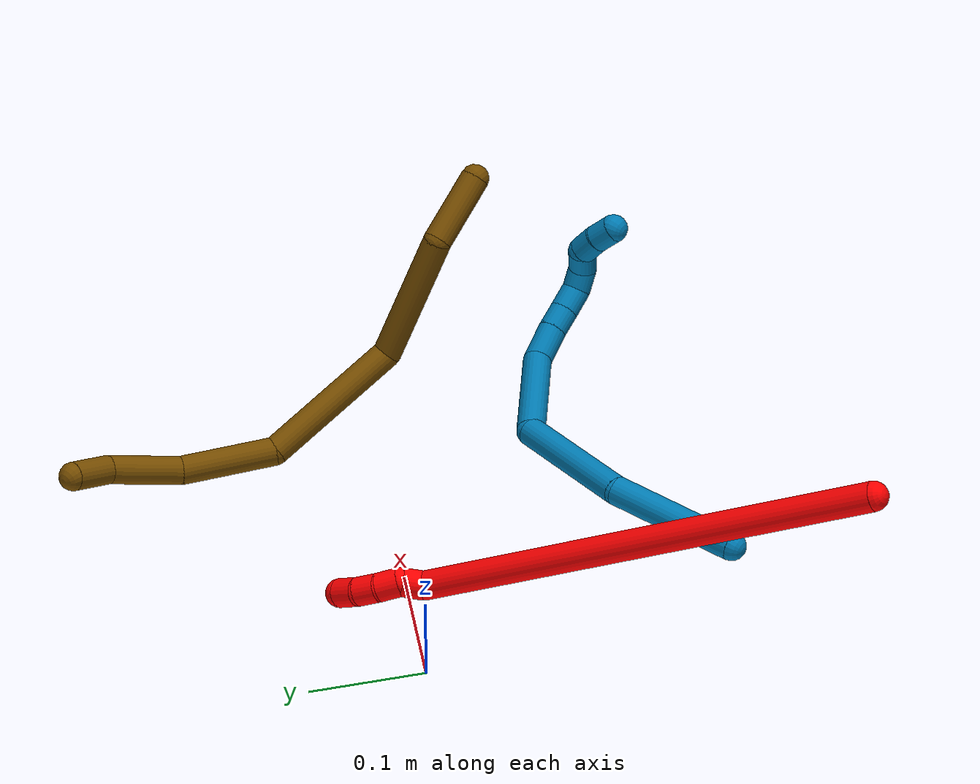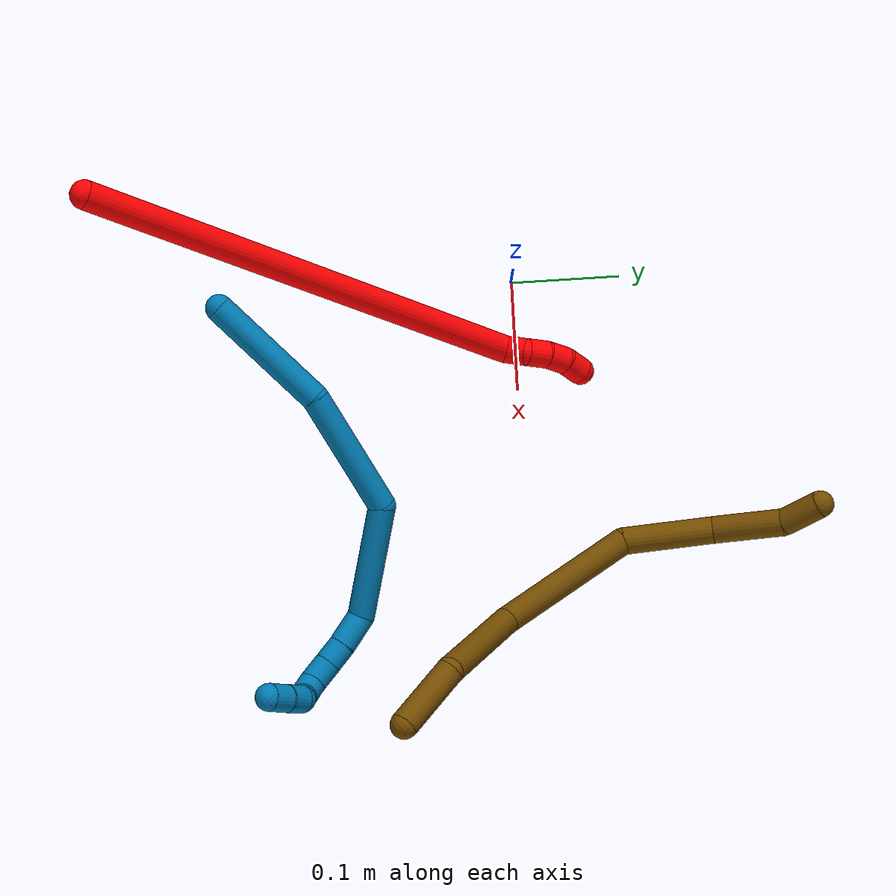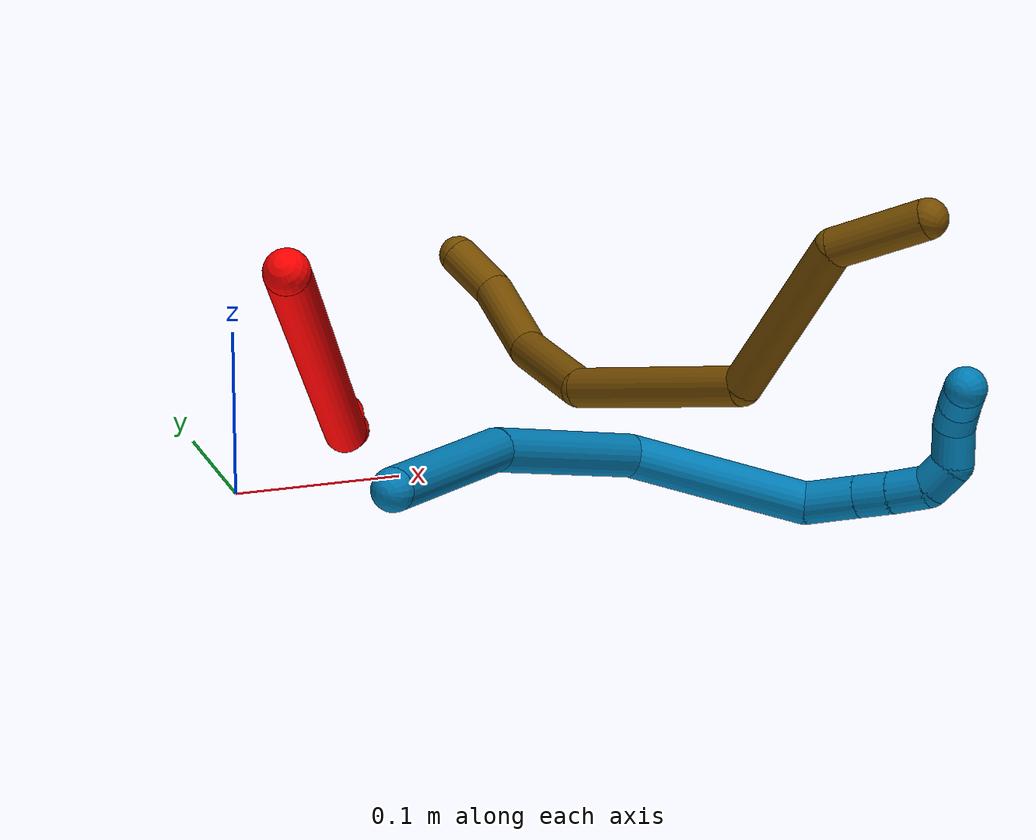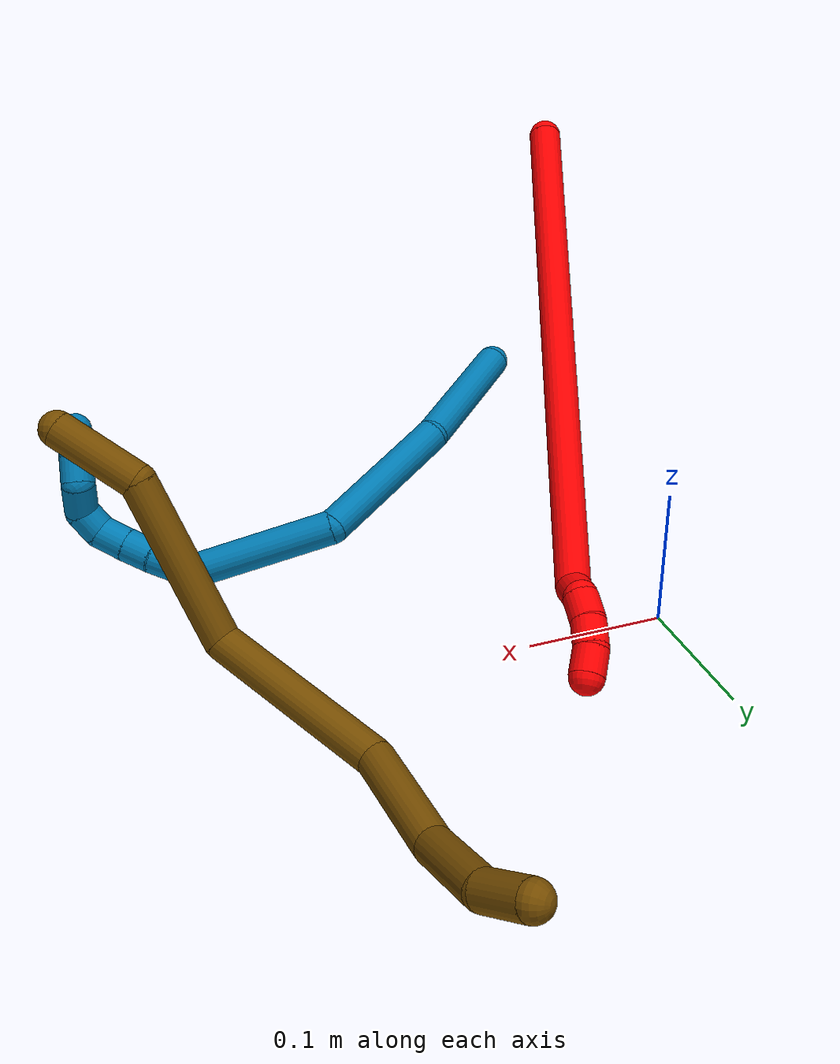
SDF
<sdf version="1.7">
 <world name="default">
  <model name="2">
   <static>0</static>
   <link name="2">
    <collision name="collision-cylinder-e_1_1_4">
     <pose>-0.017324 0.049232 -0.203187 -2.90388 -0.082674 0.666824</pose>
     <geometry><cylinder><radius>0.0125</radius><length>0.419566</length></cylinder></geometry>
     <surface>
      <friction><ode><mu>1.16</mu><mu2>1.16</mu2><slip1>0</slip1><slip2>0</slip2></ode></friction>
      <contact><ode><kp>1e+06</kp><kd>1</kd><max_vel>0</max_vel><min_depth>0.001</min_depth></ode></contact>
     </surface>
    </collision>
    <visual name="visual-cylinder-e_1_1_4">
     <pose>-0.017324 0.049232 -0.203187 -2.90388 -0.082674 0.666824</pose>
     <geometry><cylinder><radius>0.0125</radius><length>0.419566</length></cylinder></geometry>
     <material><ambient>1 0 0 1</ambient></material>
    </visual>
    <collision name="collision-cylinder-e_2_4_5">
     <pose>-0.0342 0.106935 -0.411709 -2.13275 0.044622 -0.080798</pose>
     <geometry><cylinder><radius>0.0125</radius><length>0.020044</length></cylinder></geometry>
     <surface>
      <friction><ode><mu>1.16</mu><mu2>1.16</mu2><slip1>0</slip1><slip2>0</slip2></ode></friction>
      <contact><ode><kp>1e+06</kp><kd>1</kd><max_vel>0</max_vel><min_depth>0.001</min_depth></ode></contact>
     </surface>
    </collision>
    <visual name="visual-cylinder-e_2_4_5">
     <pose>-0.0342 0.106935 -0.411709 -2.13275 0.044622 -0.080798</pose>
     <geometry><cylinder><radius>0.0125</radius><length>0.020044</length></cylinder></geometry>
     <material><ambient>1 0 0 1</ambient></material>
    </visual>
    <collision name="collision-cylinder-e_3_5_6">
     <pose>-0.035934 0.119597 -0.425939 -2.70141 -0.21821 0.910647</pose>
     <geometry><cylinder><radius>0.0125</radius><length>0.020142</length></cylinder></geometry>
     <surface>
      <friction><ode><mu>1.16</mu><mu2>1.16</mu2><slip1>0</slip1><slip2>0</slip2></ode></friction>
      <contact><ode><kp>1e+06</kp><kd>1</kd><max_vel>0</max_vel><min_depth>0.001</min_depth></ode></contact>
     </surface>
    </collision>
    <visual name="visual-cylinder-e_3_5_6">
     <pose>-0.035934 0.119597 -0.425939 -2.70141 -0.21821 0.910647</pose>
     <geometry><cylinder><radius>0.0125</radius><length>0.020142</length></cylinder></geometry>
     <material><ambient>1 0 0 1</ambient></material>
    </visual>
    <collision name="collision-cylinder-e_4_6_7">
     <pose>-0.039087 0.126541 -0.444412 -2.86161 -0.097365 0.665772</pose>
     <geometry><cylinder><radius>0.0125</radius><length>0.020027</length></cylinder></geometry>
     <surface>
      <friction><ode><mu>1.16</mu><mu2>1.16</mu2><slip1>0</slip1><slip2>0</slip2></ode></friction>
      <contact><ode><kp>1e+06</kp><kd>1</kd><max_vel>0</max_vel><min_depth>0.001</min_depth></ode></contact>
     </surface>
    </collision>
    <visual name="visual-cylinder-e_4_6_7">
     <pose>-0.039087 0.126541 -0.444412 -2.86161 -0.097365 0.665772</pose>
     <geometry><cylinder><radius>0.0125</radius><length>0.020027</length></cylinder></geometry>
     <material><ambient>1 0 0 1</ambient></material>
    </visual>
    <collision name="collision-cylinder-e_5_7_2">
     <pose>-0.039311 0.130136 -0.464038 -3.05805 0.074226 -1.4527</pose>
     <geometry><cylinder><radius>0.0125</radius><length>0.020221</length></cylinder></geometry>
     <surface>
      <friction><ode><mu>1.16</mu><mu2>1.16</mu2><slip1>0</slip1><slip2>0</slip2></ode></friction>
      <contact><ode><kp>1e+06</kp><kd>1</kd><max_vel>0</max_vel><min_depth>0.001</min_depth></ode></contact>
     </surface>
    </collision>
    <visual name="visual-cylinder-e_5_7_2">
     <pose>-0.039311 0.130136 -0.464038 -3.05805 0.074226 -1.4527</pose>
     <geometry><cylinder><radius>0.0125</radius><length>0.020221</length></cylinder></geometry>
     <material><ambient>1 0 0 1</ambient></material>
    </visual>
    <collision name="collision-sphere-2">
     <pose>-0.038561 0.130978 -0.474085 0 -0 0</pose>
     <geometry><sphere><radius>0.0125</radius></sphere></geometry>
     <surface>
      <friction><ode><mu>1.16</mu><mu2>1.16</mu2><slip1>0</slip1><slip2>0</slip2></ode></friction>
      <contact><ode><kp>1e+06</kp><kd>1</kd><max_vel>0</max_vel><min_depth>0.001</min_depth></ode></contact>
     </surface>
    </collision>
    <visual name="visual-sphere-2">
     <pose>-0.038561 0.130978 -0.474085 0 -0 0</pose>
     <geometry><sphere><radius>0.0125</radius></sphere></geometry>
     <material><ambient>1 0 0 1</ambient></material>
    </visual>
    <collision name="collision-sphere-7">
     <pose>-0.040061 0.129295 -0.45399 0 -0 0</pose>
     <geometry><sphere><radius>0.0125</radius></sphere></geometry>
     <surface>
      <friction><ode><mu>1.16</mu><mu2>1.16</mu2><slip1>0</slip1><slip2>0</slip2></ode></friction>
      <contact><ode><kp>1e+06</kp><kd>1</kd><max_vel>0</max_vel><min_depth>0.001</min_depth></ode></contact>
     </surface>
    </collision>
    <visual name="visual-sphere-7">
     <pose>-0.040061 0.129295 -0.45399 0 -0 0</pose>
     <geometry><sphere><radius>0.0125</radius></sphere></geometry>
     <material><ambient>1 0 0 1</ambient></material>
    </visual>
    <collision name="collision-sphere-6">
     <pose>-0.038114 0.123787 -0.434834 0 -0 0</pose>
     <geometry><sphere><radius>0.0125</radius></sphere></geometry>
     <surface>
      <friction><ode><mu>1.16</mu><mu2>1.16</mu2><slip1>0</slip1><slip2>0</slip2></ode></friction>
      <contact><ode><kp>1e+06</kp><kd>1</kd><max_vel>0</max_vel><min_depth>0.001</min_depth></ode></contact>
     </surface>
    </collision>
    <visual name="visual-sphere-6">
     <pose>-0.038114 0.123787 -0.434834 0 -0 0</pose>
     <geometry><sphere><radius>0.0125</radius></sphere></geometry>
     <material><ambient>1 0 0 1</ambient></material>
    </visual>
    <collision name="collision-sphere-5">
     <pose>-0.033753 0.115408 -0.417044 0 -0 0</pose>
     <geometry><sphere><radius>0.0125</radius></sphere></geometry>
     <surface>
      <friction><ode><mu>1.16</mu><mu2>1.16</mu2><slip1>0</slip1><slip2>0</slip2></ode></friction>
      <contact><ode><kp>1e+06</kp><kd>1</kd><max_vel>0</max_vel><min_depth>0.001</min_depth></ode></contact>
     </surface>
    </collision>
    <visual name="visual-sphere-5">
     <pose>-0.033753 0.115408 -0.417044 0 -0 0</pose>
     <geometry><sphere><radius>0.0125</radius></sphere></geometry>
     <material><ambient>1 0 0 1</ambient></material>
    </visual>
    <collision name="collision-sphere-1">
     <geometry><sphere><radius>0.0125</radius></sphere></geometry>
     <surface>
      <friction><ode><mu>1.16</mu><mu2>1.16</mu2><slip1>0</slip1><slip2>0</slip2></ode></friction>
      <contact><ode><kp>1e+06</kp><kd>1</kd><max_vel>0</max_vel><min_depth>0.001</min_depth></ode></contact>
     </surface>
    </collision>
    <visual name="visual-sphere-1">
     <geometry><sphere><radius>0.0125</radius></sphere></geometry>
     <material><ambient>1 0 0 1</ambient></material>
    </visual>
    <collision name="collision-sphere-4">
     <pose>-0.034648 0.098463 -0.406374 0 -0 0</pose>
     <geometry><sphere><radius>0.0125</radius></sphere></geometry>
     <surface>
      <friction><ode><mu>1.16</mu><mu2>1.16</mu2><slip1>0</slip1><slip2>0</slip2></ode></friction>
      <contact><ode><kp>1e+06</kp><kd>1</kd><max_vel>0</max_vel><min_depth>0.001</min_depth></ode></contact>
     </surface>
    </collision>
    <visual name="visual-sphere-4">
     <pose>-0.034648 0.098463 -0.406374 0 -0 0</pose>
     <geometry><sphere><radius>0.0125</radius></sphere></geometry>
     <material><ambient>1 0 0 1</ambient></material>
    </visual>
    <inertial>
     <pose>-0.020511 0.060748 -0.240731 0 -0 0</pose>
     <mass>0.5</mass>
     <inertia>
      <ixx>0.008638</ixx>
      <ixy>0</ixy>
      <ixz>0</ixz>
      <iyy>-0.000827</iyy>
      <iyz>0</iyz>
      <izz>-0.000978</izz>
     </inertia>
    </inertial>
   </link>
   <pose>-0.063243 -0.350103 0.24435 0.806725 -0.341844 -0.255063</pose>
  </model>
  <model name="9">
   <static>0</static>
   <link name="9">
    <collision name="collision-cylinder-e_1_1_4">
     <pose>-0.000278 -5.5e-05 -0.058066 3.14065 -0.00479 -2.75279</pose>
     <geometry><cylinder><radius>0.0125</radius><length>0.116133</length></cylinder></geometry>
     <surface>
      <friction><ode><mu>1.16</mu><mu2>1.16</mu2><slip1>0</slip1><slip2>0</slip2></ode></friction>
      <contact><ode><kp>1e+06</kp><kd>1</kd><max_vel>0</max_vel><min_depth>0.001</min_depth></ode></contact>
     </surface>
    </collision>
    <visual name="visual-cylinder-e_1_1_4">
     <pose>-0.000278 -5.5e-05 -0.058066 3.14065 -0.00479 -2.75279</pose>
     <geometry><cylinder><radius>0.0125</radius><length>0.116133</length></cylinder></geometry>
     <material><ambient>0 0.490196 0.709804 1</ambient></material>
    </visual>
    <collision name="collision-cylinder-e_2_4_5">
     <pose>0.007481 -0.015901 -0.171346 2.86302 0.139053 0.92207</pose>
     <geometry><cylinder><radius>0.0125</radius><length>0.115976</length></cylinder></geometry>
     <surface>
      <friction><ode><mu>1.16</mu><mu2>1.16</mu2><slip1>0</slip1><slip2>0</slip2></ode></friction>
      <contact><ode><kp>1e+06</kp><kd>1</kd><max_vel>0</max_vel><min_depth>0.001</min_depth></ode></contact>
     </surface>
    </collision>
    <visual name="visual-cylinder-e_2_4_5">
     <pose>0.007481 -0.015901 -0.171346 2.86302 0.139053 0.92207</pose>
     <geometry><cylinder><radius>0.0125</radius><length>0.115976</length></cylinder></geometry>
     <material><ambient>0 0.490196 0.709804 1</ambient></material>
    </visual>
    <collision name="collision-cylinder-e_3_5_6">
     <pose>0.04769 -0.063696 -0.255075 2.29861 0.643843 1.27913</pose>
     <geometry><cylinder><radius>0.0125</radius><length>0.107187</length></cylinder></geometry>
     <surface>
      <friction><ode><mu>1.16</mu><mu2>1.16</mu2><slip1>0</slip1><slip2>0</slip2></ode></friction>
      <contact><ode><kp>1e+06</kp><kd>1</kd><max_vel>0</max_vel><min_depth>0.001</min_depth></ode></contact>
     </surface>
    </collision>
    <visual name="visual-cylinder-e_3_5_6">
     <pose>0.04769 -0.063696 -0.255075 2.29861 0.643843 1.27913</pose>
     <geometry><cylinder><radius>0.0125</radius><length>0.107187</length></cylinder></geometry>
     <material><ambient>0 0.490196 0.709804 1</ambient></material>
    </visual>
    <collision name="collision-cylinder-e_4_6_7">
     <pose>0.095395 -0.099538 -0.286033 2.13769 1.2859 1.87702</pose>
     <geometry><cylinder><radius>0.0125</radius><length>0.032375</length></cylinder></geometry>
     <surface>
      <friction><ode><mu>1.16</mu><mu2>1.16</mu2><slip1>0</slip1><slip2>0</slip2></ode></friction>
      <contact><ode><kp>1e+06</kp><kd>1</kd><max_vel>0</max_vel><min_depth>0.001</min_depth></ode></contact>
     </surface>
    </collision>
    <visual name="visual-cylinder-e_4_6_7">
     <pose>0.095395 -0.099538 -0.286033 2.13769 1.2859 1.87702</pose>
     <geometry><cylinder><radius>0.0125</radius><length>0.032375</length></cylinder></geometry>
     <material><ambient>0 0.490196 0.709804 1</ambient></material>
    </visual>
    <collision name="collision-cylinder-e_5_7_8">
     <pose>0.12111 -0.105839 -0.289135 1.83197 1.3254 1.58709</pose>
     <geometry><cylinder><radius>0.0125</radius><length>0.02099</length></cylinder></geometry>
     <surface>
      <friction><ode><mu>1.16</mu><mu2>1.16</mu2><slip1>0</slip1><slip2>0</slip2></ode></friction>
      <contact><ode><kp>1e+06</kp><kd>1</kd><max_vel>0</max_vel><min_depth>0.001</min_depth></ode></contact>
     </surface>
    </collision>
    <visual name="visual-cylinder-e_5_7_8">
     <pose>0.12111 -0.105839 -0.289135 1.83197 1.3254 1.58709</pose>
     <geometry><cylinder><radius>0.0125</radius><length>0.02099</length></cylinder></geometry>
     <material><ambient>0 0.490196 0.709804 1</ambient></material>
    </visual>
    <collision name="collision-cylinder-e_6_8_9">
     <pose>0.142576 -0.110483 -0.29041 1.84647 1.37261 1.65044</pose>
     <geometry><cylinder><radius>0.0125</radius><length>0.023021</length></cylinder></geometry>
     <surface>
      <friction><ode><mu>1.16</mu><mu2>1.16</mu2><slip1>0</slip1><slip2>0</slip2></ode></friction>
      <contact><ode><kp>1e+06</kp><kd>1</kd><max_vel>0</max_vel><min_depth>0.001</min_depth></ode></contact>
     </surface>
    </collision>
    <visual name="visual-cylinder-e_6_8_9">
     <pose>0.142576 -0.110483 -0.29041 1.84647 1.37261 1.65044</pose>
     <geometry><cylinder><radius>0.0125</radius><length>0.023021</length></cylinder></geometry>
     <material><ambient>0 0.490196 0.709804 1</ambient></material>
    </visual>
    <collision name="collision-cylinder-e_7_9_10">
     <pose>0.163272 -0.109091 -0.291493 -1.70058 1.2052 -1.32931</pose>
     <geometry><cylinder><radius>0.0125</radius><length>0.020155</length></cylinder></geometry>
     <surface>
      <friction><ode><mu>1.16</mu><mu2>1.16</mu2><slip1>0</slip1><slip2>0</slip2></ode></friction>
      <contact><ode><kp>1e+06</kp><kd>1</kd><max_vel>0</max_vel><min_depth>0.001</min_depth></ode></contact>
     </surface>
    </collision>
    <visual name="visual-cylinder-e_7_9_10">
     <pose>0.163272 -0.109091 -0.291493 -1.70058 1.2052 -1.32931</pose>
     <geometry><cylinder><radius>0.0125</radius><length>0.020155</length></cylinder></geometry>
     <material><ambient>0 0.490196 0.709804 1</ambient></material>
    </visual>
    <collision name="collision-cylinder-e_8_10_11">
     <pose>0.178249 -0.095082 -0.291136 -1.49209 0.488544 -0.452832</pose>
     <geometry><cylinder><radius>0.0125</radius><length>0.023713</length></cylinder></geometry>
     <surface>
      <friction><ode><mu>1.16</mu><mu2>1.16</mu2><slip1>0</slip1><slip2>0</slip2></ode></friction>
      <contact><ode><kp>1e+06</kp><kd>1</kd><max_vel>0</max_vel><min_depth>0.001</min_depth></ode></contact>
     </surface>
    </collision>
    <visual name="visual-cylinder-e_8_10_11">
     <pose>0.178249 -0.095082 -0.291136 -1.49209 0.488544 -0.452832</pose>
     <geometry><cylinder><radius>0.0125</radius><length>0.023713</length></cylinder></geometry>
     <material><ambient>0 0.490196 0.709804 1</ambient></material>
    </visual>
    <collision name="collision-cylinder-e_9_11_12">
     <pose>0.19058 -0.079733 -0.284522 -0.703341 0.727923 -0.277746</pose>
     <geometry><cylinder><radius>0.0125</radius><length>0.020342</length></cylinder></geometry>
     <surface>
      <friction><ode><mu>1.16</mu><mu2>1.16</mu2><slip1>0</slip1><slip2>0</slip2></ode></friction>
      <contact><ode><kp>1e+06</kp><kd>1</kd><max_vel>0</max_vel><min_depth>0.001</min_depth></ode></contact>
     </surface>
    </collision>
    <visual name="visual-cylinder-e_9_11_12">
     <pose>0.19058 -0.079733 -0.284522 -0.703341 0.727923 -0.277746</pose>
     <geometry><cylinder><radius>0.0125</radius><length>0.020342</length></cylinder></geometry>
     <material><ambient>0 0.490196 0.709804 1</ambient></material>
    </visual>
    <collision name="collision-cylinder-e_10_12_2">
     <pose>0.203982 -0.071162 -0.272121 -0.505736 0.720599 -0.194089</pose>
     <geometry><cylinder><radius>0.0125</radius><length>0.020108</length></cylinder></geometry>
     <surface>
      <friction><ode><mu>1.16</mu><mu2>1.16</mu2><slip1>0</slip1><slip2>0</slip2></ode></friction>
      <contact><ode><kp>1e+06</kp><kd>1</kd><max_vel>0</max_vel><min_depth>0.001</min_depth></ode></contact>
     </surface>
    </collision>
    <visual name="visual-cylinder-e_10_12_2">
     <pose>0.203982 -0.071162 -0.272121 -0.505736 0.720599 -0.194089</pose>
     <geometry><cylinder><radius>0.0125</radius><length>0.020108</length></cylinder></geometry>
     <material><ambient>0 0.490196 0.709804 1</ambient></material>
    </visual>
    <collision name="collision-sphere-2">
     <pose>0.210616 -0.067502 -0.265512 0 -0 0</pose>
     <geometry><sphere><radius>0.0125</radius></sphere></geometry>
     <surface>
      <friction><ode><mu>1.16</mu><mu2>1.16</mu2><slip1>0</slip1><slip2>0</slip2></ode></friction>
      <contact><ode><kp>1e+06</kp><kd>1</kd><max_vel>0</max_vel><min_depth>0.001</min_depth></ode></contact>
     </surface>
    </collision>
    <visual name="visual-sphere-2">
     <pose>0.210616 -0.067502 -0.265512 0 -0 0</pose>
     <geometry><sphere><radius>0.0125</radius></sphere></geometry>
     <material><ambient>0 0.490196 0.709804 1</ambient></material>
    </visual>
    <collision name="collision-sphere-12">
     <pose>0.197347 -0.074822 -0.27873 0 -0 0</pose>
     <geometry><sphere><radius>0.0125</radius></sphere></geometry>
     <surface>
      <friction><ode><mu>1.16</mu><mu2>1.16</mu2><slip1>0</slip1><slip2>0</slip2></ode></friction>
      <contact><ode><kp>1e+06</kp><kd>1</kd><max_vel>0</max_vel><min_depth>0.001</min_depth></ode></contact>
     </surface>
    </collision>
    <visual name="visual-sphere-12">
     <pose>0.197347 -0.074822 -0.27873 0 -0 0</pose>
     <geometry><sphere><radius>0.0125</radius></sphere></geometry>
     <material><ambient>0 0.490196 0.709804 1</ambient></material>
    </visual>
    <collision name="collision-sphere-11">
     <pose>0.183813 -0.084645 -0.290313 0 -0 0</pose>
     <geometry><sphere><radius>0.0125</radius></sphere></geometry>
     <surface>
      <friction><ode><mu>1.16</mu><mu2>1.16</mu2><slip1>0</slip1><slip2>0</slip2></ode></friction>
      <contact><ode><kp>1e+06</kp><kd>1</kd><max_vel>0</max_vel><min_depth>0.001</min_depth></ode></contact>
     </surface>
    </collision>
    <visual name="visual-sphere-11">
     <pose>0.183813 -0.084645 -0.290313 0 -0 0</pose>
     <geometry><sphere><radius>0.0125</radius></sphere></geometry>
     <material><ambient>0 0.490196 0.709804 1</ambient></material>
    </visual>
    <collision name="collision-sphere-10">
     <pose>0.172684 -0.105519 -0.291959 0 -0 0</pose>
     <geometry><sphere><radius>0.0125</radius></sphere></geometry>
     <surface>
      <friction><ode><mu>1.16</mu><mu2>1.16</mu2><slip1>0</slip1><slip2>0</slip2></ode></friction>
      <contact><ode><kp>1e+06</kp><kd>1</kd><max_vel>0</max_vel><min_depth>0.001</min_depth></ode></contact>
     </surface>
    </collision>
    <visual name="visual-sphere-10">
     <pose>0.172684 -0.105519 -0.291959 0 -0 0</pose>
     <geometry><sphere><radius>0.0125</radius></sphere></geometry>
     <material><ambient>0 0.490196 0.709804 1</ambient></material>
    </visual>
    <collision name="collision-sphere-9">
     <pose>0.153861 -0.112664 -0.291027 0 -0 0</pose>
     <geometry><sphere><radius>0.0125</radius></sphere></geometry>
     <surface>
      <friction><ode><mu>1.16</mu><mu2>1.16</mu2><slip1>0</slip1><slip2>0</slip2></ode></friction>
      <contact><ode><kp>1e+06</kp><kd>1</kd><max_vel>0</max_vel><min_depth>0.001</min_depth></ode></contact>
     </surface>
    </collision>
    <visual name="visual-sphere-9">
     <pose>0.153861 -0.112664 -0.291027 0 -0 0</pose>
     <geometry><sphere><radius>0.0125</radius></sphere></geometry>
     <material><ambient>0 0.490196 0.709804 1</ambient></material>
    </visual>
    <collision name="collision-sphere-4">
     <pose>-0.000556 -0.00011 -0.116131 0 -0 0</pose>
     <geometry><sphere><radius>0.0125</radius></sphere></geometry>
     <surface>
      <friction><ode><mu>1.16</mu><mu2>1.16</mu2><slip1>0</slip1><slip2>0</slip2></ode></friction>
      <contact><ode><kp>1e+06</kp><kd>1</kd><max_vel>0</max_vel><min_depth>0.001</min_depth></ode></contact>
     </surface>
    </collision>
    <visual name="visual-sphere-4">
     <pose>-0.000556 -0.00011 -0.116131 0 -0 0</pose>
     <geometry><sphere><radius>0.0125</radius></sphere></geometry>
     <material><ambient>0 0.490196 0.709804 1</ambient></material>
    </visual>
    <collision name="collision-sphere-1">
     <geometry><sphere><radius>0.0125</radius></sphere></geometry>
     <surface>
      <friction><ode><mu>1.16</mu><mu2>1.16</mu2><slip1>0</slip1><slip2>0</slip2></ode></friction>
      <contact><ode><kp>1e+06</kp><kd>1</kd><max_vel>0</max_vel><min_depth>0.001</min_depth></ode></contact>
     </surface>
    </collision>
    <visual name="visual-sphere-1">
     <geometry><sphere><radius>0.0125</radius></sphere></geometry>
     <material><ambient>0 0.490196 0.709804 1</ambient></material>
    </visual>
    <collision name="collision-sphere-8">
     <pose>0.131291 -0.108302 -0.289793 0 -0 0</pose>
     <geometry><sphere><radius>0.0125</radius></sphere></geometry>
     <surface>
      <friction><ode><mu>1.16</mu><mu2>1.16</mu2><slip1>0</slip1><slip2>0</slip2></ode></friction>
      <contact><ode><kp>1e+06</kp><kd>1</kd><max_vel>0</max_vel><min_depth>0.001</min_depth></ode></contact>
     </surface>
    </collision>
    <visual name="visual-sphere-8">
     <pose>0.131291 -0.108302 -0.289793 0 -0 0</pose>
     <geometry><sphere><radius>0.0125</radius></sphere></geometry>
     <material><ambient>0 0.490196 0.709804 1</ambient></material>
    </visual>
    <collision name="collision-sphere-5">
     <pose>0.015519 -0.031693 -0.226561 0 -0 0</pose>
     <geometry><sphere><radius>0.0125</radius></sphere></geometry>
     <surface>
      <friction><ode><mu>1.16</mu><mu2>1.16</mu2><slip1>0</slip1><slip2>0</slip2></ode></friction>
      <contact><ode><kp>1e+06</kp><kd>1</kd><max_vel>0</max_vel><min_depth>0.001</min_depth></ode></contact>
     </surface>
    </collision>
    <visual name="visual-sphere-5">
     <pose>0.015519 -0.031693 -0.226561 0 -0 0</pose>
     <geometry><sphere><radius>0.0125</radius></sphere></geometry>
     <material><ambient>0 0.490196 0.709804 1</ambient></material>
    </visual>
    <collision name="collision-sphere-6">
     <pose>0.079861 -0.0957 -0.28359 0 -0 0</pose>
     <geometry><sphere><radius>0.0125</radius></sphere></geometry>
     <surface>
      <friction><ode><mu>1.16</mu><mu2>1.16</mu2><slip1>0</slip1><slip2>0</slip2></ode></friction>
      <contact><ode><kp>1e+06</kp><kd>1</kd><max_vel>0</max_vel><min_depth>0.001</min_depth></ode></contact>
     </surface>
    </collision>
    <visual name="visual-sphere-6">
     <pose>0.079861 -0.0957 -0.28359 0 -0 0</pose>
     <geometry><sphere><radius>0.0125</radius></sphere></geometry>
     <material><ambient>0 0.490196 0.709804 1</ambient></material>
    </visual>
    <collision name="collision-sphere-7">
     <pose>0.11093 -0.103376 -0.288476 0 -0 0</pose>
     <geometry><sphere><radius>0.0125</radius></sphere></geometry>
     <surface>
      <friction><ode><mu>1.16</mu><mu2>1.16</mu2><slip1>0</slip1><slip2>0</slip2></ode></friction>
      <contact><ode><kp>1e+06</kp><kd>1</kd><max_vel>0</max_vel><min_depth>0.001</min_depth></ode></contact>
     </surface>
    </collision>
    <visual name="visual-sphere-7">
     <pose>0.11093 -0.103376 -0.288476 0 -0 0</pose>
     <geometry><sphere><radius>0.0125</radius></sphere></geometry>
     <material><ambient>0 0.490196 0.709804 1</ambient></material>
    </visual>
    <inertial>
     <pose>0.060712 -0.048343 -0.200018 0 -0 0</pose>
     <mass>0.5</mass>
     <inertia>
      <ixx>0.000137</ixx>
      <ixy>0</ixy>
      <ixz>0</ixz>
      <iyy>0.00022</iyy>
      <iyz>0</iyz>
      <izz>-1.6e-05</izz>
     </inertia>
    </inertial>
   </link>
   <pose>0.018264 -0.261578 0.08891 1.44894 -0.492692 -0.755299</pose>
  </model>
  <model name="12">
   <static>0</static>
   <link name="12">
    <collision name="collision-cylinder-e_1_1_4">
     <pose>0.013219 0.013446 -0.02577 -2.66066 0.426817 -1.44755</pose>
     <geometry><cylinder><radius>0.0125</radius><length>0.063863</length></cylinder></geometry>
     <surface>
      <friction><ode><mu>1.16</mu><mu2>1.16</mu2><slip1>0</slip1><slip2>0</slip2></ode></friction>
      <contact><ode><kp>1e+06</kp><kd>1</kd><max_vel>0</max_vel><min_depth>0.001</min_depth></ode></contact>
     </surface>
    </collision>
    <visual name="visual-cylinder-e_1_1_4">
     <pose>0.013219 0.013446 -0.02577 -2.66066 0.426817 -1.44755</pose>
     <geometry><cylinder><radius>0.0125</radius><length>0.063863</length></cylinder></geometry>
     <material><ambient>0.466667 0.301961 0 1</ambient></material>
    </visual>
    <collision name="collision-cylinder-e_2_4_5">
     <pose>0.055242 0.073473 -0.072282 -1.98974 0.514203 -0.76943</pose>
     <geometry><cylinder><radius>0.0125</radius><length>0.117126</length></cylinder></geometry>
     <surface>
      <friction><ode><mu>1.16</mu><mu2>1.16</mu2><slip1>0</slip1><slip2>0</slip2></ode></friction>
      <contact><ode><kp>1e+06</kp><kd>1</kd><max_vel>0</max_vel><min_depth>0.001</min_depth></ode></contact>
     </surface>
    </collision>
    <visual name="visual-cylinder-e_2_4_5">
     <pose>0.055242 0.073473 -0.072282 -1.98974 0.514203 -0.76943</pose>
     <geometry><cylinder><radius>0.0125</radius><length>0.117126</length></cylinder></geometry>
     <material><ambient>0.466667 0.301961 0 1</ambient></material>
    </visual>
    <collision name="collision-cylinder-e_3_5_6">
     <pose>0.091464 0.148357 -0.152065 -2.69457 0.112825 -0.487024</pose>
     <geometry><cylinder><radius>0.0125</radius><length>0.131786</length></cylinder></geometry>
     <surface>
      <friction><ode><mu>1.16</mu><mu2>1.16</mu2><slip1>0</slip1><slip2>0</slip2></ode></friction>
      <contact><ode><kp>1e+06</kp><kd>1</kd><max_vel>0</max_vel><min_depth>0.001</min_depth></ode></contact>
     </surface>
    </collision>
    <visual name="visual-cylinder-e_3_5_6">
     <pose>0.091464 0.148357 -0.152065 -2.69457 0.112825 -0.487024</pose>
     <geometry><cylinder><radius>0.0125</radius><length>0.131786</length></cylinder></geometry>
     <material><ambient>0.466667 0.301961 0 1</ambient></material>
    </visual>
    <collision name="collision-cylinder-e_4_6_7">
     <pose>0.082809 0.196113 -0.244385 -2.61263 -0.395052 1.27282</pose>
     <geometry><cylinder><radius>0.0125</radius><length>0.083531</length></cylinder></geometry>
     <surface>
      <friction><ode><mu>1.16</mu><mu2>1.16</mu2><slip1>0</slip1><slip2>0</slip2></ode></friction>
      <contact><ode><kp>1e+06</kp><kd>1</kd><max_vel>0</max_vel><min_depth>0.001</min_depth></ode></contact>
     </surface>
    </collision>
    <visual name="visual-cylinder-e_4_6_7">
     <pose>0.082809 0.196113 -0.244385 -2.61263 -0.395052 1.27282</pose>
     <geometry><cylinder><radius>0.0125</radius><length>0.083531</length></cylinder></geometry>
     <material><ambient>0.466667 0.301961 0 1</ambient></material>
    </visual>
    <collision name="collision-cylinder-e_5_7_8">
     <pose>0.048609 0.221625 -0.304418 -2.91888 -0.583952 2.42927</pose>
     <geometry><cylinder><radius>0.0125</radius><length>0.065756</length></cylinder></geometry>
     <surface>
      <friction><ode><mu>1.16</mu><mu2>1.16</mu2><slip1>0</slip1><slip2>0</slip2></ode></friction>
      <contact><ode><kp>1e+06</kp><kd>1</kd><max_vel>0</max_vel><min_depth>0.001</min_depth></ode></contact>
     </surface>
    </collision>
    <visual name="visual-cylinder-e_5_7_8">
     <pose>0.048609 0.221625 -0.304418 -2.91888 -0.583952 2.42927</pose>
     <geometry><cylinder><radius>0.0125</radius><length>0.065756</length></cylinder></geometry>
     <material><ambient>0.466667 0.301961 0 1</ambient></material>
    </visual>
    <collision name="collision-cylinder-e_6_8_2">
     <pose>0.02424 0.226366 -0.349034 3.06799 -0.335335 -2.71323</pose>
     <geometry><cylinder><radius>0.0125</radius><length>0.037938</length></cylinder></geometry>
     <surface>
      <friction><ode><mu>1.16</mu><mu2>1.16</mu2><slip1>0</slip1><slip2>0</slip2></ode></friction>
      <contact><ode><kp>1e+06</kp><kd>1</kd><max_vel>0</max_vel><min_depth>0.001</min_depth></ode></contact>
     </surface>
    </collision>
    <visual name="visual-cylinder-e_6_8_2">
     <pose>0.02424 0.226366 -0.349034 3.06799 -0.335335 -2.71323</pose>
     <geometry><cylinder><radius>0.0125</radius><length>0.037938</length></cylinder></geometry>
     <material><ambient>0.466667 0.301961 0 1</ambient></material>
    </visual>
    <collision name="collision-sphere-2">
     <pose>0.017997 0.225049 -0.366898 0 -0 0</pose>
     <geometry><sphere><radius>0.0125</radius></sphere></geometry>
     <surface>
      <friction><ode><mu>1.16</mu><mu2>1.16</mu2><slip1>0</slip1><slip2>0</slip2></ode></friction>
      <contact><ode><kp>1e+06</kp><kd>1</kd><max_vel>0</max_vel><min_depth>0.001</min_depth></ode></contact>
     </surface>
    </collision>
    <visual name="visual-sphere-2">
     <pose>0.017997 0.225049 -0.366898 0 -0 0</pose>
     <geometry><sphere><radius>0.0125</radius></sphere></geometry>
     <material><ambient>0.466667 0.301961 0 1</ambient></material>
    </visual>
    <collision name="collision-sphere-4">
     <pose>0.026438 0.026893 -0.051539 0 -0 0</pose>
     <geometry><sphere><radius>0.0125</radius></sphere></geometry>
     <surface>
      <friction><ode><mu>1.16</mu><mu2>1.16</mu2><slip1>0</slip1><slip2>0</slip2></ode></friction>
      <contact><ode><kp>1e+06</kp><kd>1</kd><max_vel>0</max_vel><min_depth>0.001</min_depth></ode></contact>
     </surface>
    </collision>
    <visual name="visual-sphere-4">
     <pose>0.026438 0.026893 -0.051539 0 -0 0</pose>
     <geometry><sphere><radius>0.0125</radius></sphere></geometry>
     <material><ambient>0.466667 0.301961 0 1</ambient></material>
    </visual>
    <collision name="collision-sphere-1">
     <geometry><sphere><radius>0.0125</radius></sphere></geometry>
     <surface>
      <friction><ode><mu>1.16</mu><mu2>1.16</mu2><slip1>0</slip1><slip2>0</slip2></ode></friction>
      <contact><ode><kp>1e+06</kp><kd>1</kd><max_vel>0</max_vel><min_depth>0.001</min_depth></ode></contact>
     </surface>
    </collision>
    <visual name="visual-sphere-1">
     <geometry><sphere><radius>0.0125</radius></sphere></geometry>
     <material><ambient>0.466667 0.301961 0 1</ambient></material>
    </visual>
    <collision name="collision-sphere-8">
     <pose>0.030482 0.227683 -0.33117 0 -0 0</pose>
     <geometry><sphere><radius>0.0125</radius></sphere></geometry>
     <surface>
      <friction><ode><mu>1.16</mu><mu2>1.16</mu2><slip1>0</slip1><slip2>0</slip2></ode></friction>
      <contact><ode><kp>1e+06</kp><kd>1</kd><max_vel>0</max_vel><min_depth>0.001</min_depth></ode></contact>
     </surface>
    </collision>
    <visual name="visual-sphere-8">
     <pose>0.030482 0.227683 -0.33117 0 -0 0</pose>
     <geometry><sphere><radius>0.0125</radius></sphere></geometry>
     <material><ambient>0.466667 0.301961 0 1</ambient></material>
    </visual>
    <collision name="collision-sphere-5">
     <pose>0.084045 0.120054 -0.093024 0 -0 0</pose>
     <geometry><sphere><radius>0.0125</radius></sphere></geometry>
     <surface>
      <friction><ode><mu>1.16</mu><mu2>1.16</mu2><slip1>0</slip1><slip2>0</slip2></ode></friction>
      <contact><ode><kp>1e+06</kp><kd>1</kd><max_vel>0</max_vel><min_depth>0.001</min_depth></ode></contact>
     </surface>
    </collision>
    <visual name="visual-sphere-5">
     <pose>0.084045 0.120054 -0.093024 0 -0 0</pose>
     <geometry><sphere><radius>0.0125</radius></sphere></geometry>
     <material><ambient>0.466667 0.301961 0 1</ambient></material>
    </visual>
    <collision name="collision-sphere-6">
     <pose>0.098883 0.17666 -0.211105 0 -0 0</pose>
     <geometry><sphere><radius>0.0125</radius></sphere></geometry>
     <surface>
      <friction><ode><mu>1.16</mu><mu2>1.16</mu2><slip1>0</slip1><slip2>0</slip2></ode></friction>
      <contact><ode><kp>1e+06</kp><kd>1</kd><max_vel>0</max_vel><min_depth>0.001</min_depth></ode></contact>
     </surface>
    </collision>
    <visual name="visual-sphere-6">
     <pose>0.098883 0.17666 -0.211105 0 -0 0</pose>
     <geometry><sphere><radius>0.0125</radius></sphere></geometry>
     <material><ambient>0.466667 0.301961 0 1</ambient></material>
    </visual>
    <collision name="collision-sphere-7">
     <pose>0.066735 0.215566 -0.277665 0 -0 0</pose>
     <geometry><sphere><radius>0.0125</radius></sphere></geometry>
     <surface>
      <friction><ode><mu>1.16</mu><mu2>1.16</mu2><slip1>0</slip1><slip2>0</slip2></ode></friction>
      <contact><ode><kp>1e+06</kp><kd>1</kd><max_vel>0</max_vel><min_depth>0.001</min_depth></ode></contact>
     </surface>
    </collision>
    <visual name="visual-sphere-7">
     <pose>0.066735 0.215566 -0.277665 0 -0 0</pose>
     <geometry><sphere><radius>0.0125</radius></sphere></geometry>
     <material><ambient>0.466667 0.301961 0 1</ambient></material>
    </visual>
    <inertial>
     <pose>0.060802 0.137116 -0.167649 0 -0 0</pose>
     <mass>0.5</mass>
     <inertia>
      <ixx>0.000116</ixx>
      <ixy>0</ixy>
      <ixz>0</ixz>
      <iyy>-0.000245</iyy>
      <iyz>0</iyz>
      <izz>-0.000325</izz>
     </inertia>
    </inertial>
   </link>
   <pose>0.388501 -0.116247 0.164891 -1.8256 0.581501 -2.59923</pose>
  </model>
 </world>
</sdf>
